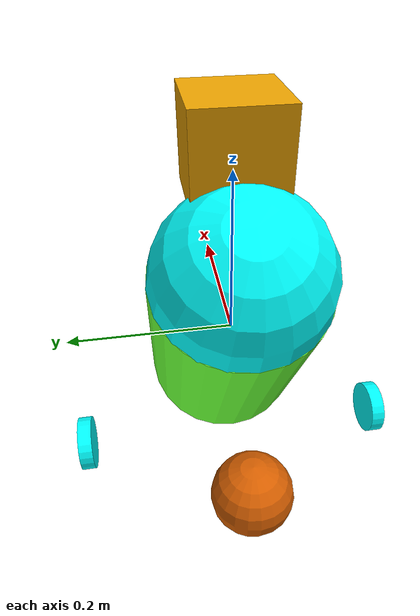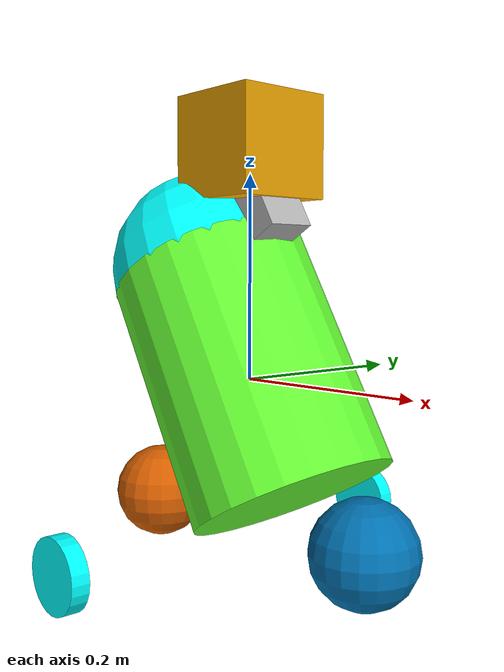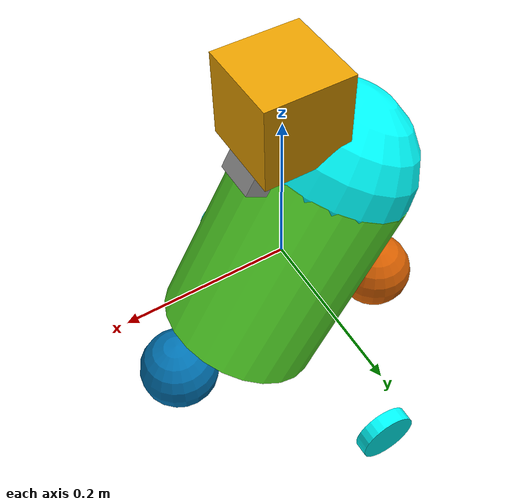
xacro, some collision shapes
<?xml version="1.0"?>
<!-- inspired by https://github.com/ros/urdf_tutorial/tree/master/urdf -->
<robot name="my_bot" xmlns:xacro="http://www.ros.org/wiki/xacro">
  <xacro:include filename="$(find udacity_bot)/urdf/my_bot.gazebo" />
  <link name="robot_footprint"></link>

  <xacro:property name="width" value="0.2" />
  <xacro:property name="leglen" value="0.6" />
  <xacro:property name="polelen" value="0.2" />
  <xacro:property name="bodylen" value="0.25" />
  <xacro:property name="baselen" value="0.4" />
  <xacro:property name="wheeldiam" value="0.07" />
  <xacro:property name="front_wheel_offset" value="0.15" />
  <xacro:property name="pi" value="3.1415" />
  <xacro:property name="tilt" value="0.52359877559" />
  <xacro:property name="cos_tilt" value="0.86602540378" />
  <xacro:property name="sin_tilt" value="0.5" />

  <material name="Bright Green">
    <color rgba="0.4 1.0 0.2 1.0"/>
  </material>

  <material name="Cyan">
    <color rgba="0 1.0 1.0 1.0"/>
  </material>

  <xacro:macro name="default_inertial" params="mass">
    <inertial>
      <mass value="${mass}" />
      <inertia ixx="1.0" ixy="0.0" ixz="0.0" iyy="1.0" iyz="0.0" izz="1.0" />
    </inertial>
  </xacro:macro>

  <joint name="robot_footprint_joint" type="fixed">
    <origin xyz="0 0 0" rpy="0 ${-1*tilt} 0" />
    <parent link="robot_footprint"/>
    <child link="chassis" />
  </joint>

  <xacro:macro name="wheel" params="prefix reflect">
    <joint type="continuous" name="${prefix}_wheel_hinge">
      <origin xyz="${-0.5 * width} ${reflect * width} ${-0.5 * bodylen}" rpy="0 0 0"/>
      <child link="${prefix}_wheel"/>
      <parent link="chassis"/>
      <axis xyz="0 1 0" rpy="0 0 0"/>
      <limit effort="10000" velocity="1000"/>
      <dynamics damping="1.0" friction="1.0"/>
    </joint>
    <link name="${prefix}_wheel">
      <inertial>
        <mass value="5.0"/>
        <origin xyz="0.0 0 0" rpy="0 ${pi/2} ${pi/2}"/>
        <inertia
            ixx="0.1" ixy="0" ixz="0"
            iyy="0.1" iyz="0"
            izz="0.1"
        />
      </inertial>
      <collision name="collision">
        <origin xyz="0.0 0 0" rpy="0 ${pi/2} ${pi/2}"/>
        <geometry>
          <cylinder radius="${wheeldiam/2}" length="${wheeldiam/4}"/>
        </geometry>
      </collision>
      <visual name="visual">
        <origin xyz="0.0 0 0" rpy="0 ${pi/2} ${pi/2}"/>
        <geometry>
          <cylinder radius="${wheeldiam/2}" length="${wheeldiam/4}"/>
        </geometry>
        <material name="Cyan"/>
      </visual>
    </link>
  </xacro:macro>

  <xacro:wheel prefix="right" reflect="-1" />
  <xacro:wheel prefix="left" reflect="1" />

  <link name="chassis">
    <pose>0 0 0.1 0 0 0</pose>

    <inertial>
      <mass value="15.0"/>
      <origin xyz="0.0 0 0" rpy="0 0 0"/>
      <inertia
          ixx="0.1" ixy="0" ixz="0"
          iyy="0.1" iyz="0"
          izz="0.1"
      />
    </inertial>

    <collision name="collision">
      <origin xyz="0 0 0" rpy="0 0 0"/>
      <geometry>
        <cylinder radius="${width / 2}" length="${bodylen}"/>
      </geometry>
    </collision>

    <visual name="chassis_visual">
      <origin xyz="0 0 0" rpy="0 0 0"/>
      <geometry>
        <cylinder radius="${width / 2}" length="${bodylen}"/>
      </geometry>
      <material name="Bright Green"/>
    </visual>
  </link>

  <xacro:macro name="caster" params="prefix reflect">
    <joint type="fixed" name="${prefix}_caster_joint">
      <origin xyz="${front_wheel_offset * reflect} 0 ${-bodylen/2 - 0.015}" rpy=" 0 0 0"/>
      <child link="${prefix}_caster"/>
      <parent link="robot_footprint"/>
    </joint>
    <link name="${prefix}_caster">
    <collision name="back_caster_collision">
      <origin xyz="0 0 0" rpy=" 0 0 0"/>
      <geometry>
        <sphere radius="0.0499"/>
      </geometry>
    </collision>
    <visual name="back_caster_visual">
      <origin xyz="0 0 0" rpy=" 0 0 0"/>
      <geometry>
        <sphere radius="0.05"/>
      </geometry>
    </visual>
    </link>
  </xacro:macro>
  <xacro:caster prefix="front" reflect="1" />
  <xacro:caster prefix="back" reflect="-1" />

  <joint type="fixed" name="head_joint">
    <origin xyz="0 0 ${bodylen/2}" rpy="0 0 0"/>
    <child link="head"/>
    <parent link="chassis"/>
  </joint>

  <link name="head">
    <visual>
      <geometry>
        <sphere radius="${width/2}"/>
      </geometry>
      <material name="Cyan"/>
    </visual>
    <collision>
      <geometry>
        <sphere radius="${width/2}"/>
      </geometry>
    </collision>
    <xacro:default_inertial mass="2"/>
  </link>

  <joint type="fixed" name="camera_joint">
    <origin xyz="${width/2} 0 0" rpy="0 0 0"/>
    <child link="camera"/>
    <parent link="head"/>
  </joint>

  <link name="camera">
    <inertial>
      <mass value="0.1"/>
      <origin xyz="0 0 0" rpy="0 0 0"/>
      <inertia
          ixx="1e-6" ixy="0" ixz="0"
          iyy="1e-6" iyz="0"
          izz="1e-6"
      />
    </inertial>
    <collision name="collision">
      <origin xyz="0 0 0" rpy="0 0 0"/>
      <geometry>
        <box size="0.05 0.05 0.05"/>
      </geometry>
    </collision>
    <visual name="visual">
      <origin xyz="0 0 0" rpy="0 0 0"/>
      <geometry>
        <box size="0.05 0.05 0.05"/>
      </geometry>
    </visual>
  </link>

  <joint type="fixed" name="hokuyo_joint">
    <origin xyz="0 0 ${bodylen/2 + width/2}" rpy="0 0 0"/>
    <child link="hokuyo"/>
    <parent link="robot_footprint"/>
  </joint>

  <link name="hokuyo">
    <inertial>
      <mass value="0.1"/>
      <origin xyz="0 0 0" rpy="0 0 0"/>
      <inertia
          ixx="1e-6" ixy="0" ixz="0"
          iyy="1e-6" iyz="0"
          izz="1e-6"
      />
    </inertial>
    <collision name="collision">
      <origin xyz="0 0 0" rpy="0 0 0"/>
      <geometry>
        <box size="0.1 0.1 0.1"/>
      </geometry>
    </collision>
    <visual name="visual">
      <origin xyz="0 0 0" rpy="0 0 0"/>
      <geometry>
        <mesh filename="package://udacity_bot/meshes/hokuyo.dae"/>
      </geometry>
    </visual>
  </link>

</robot>
